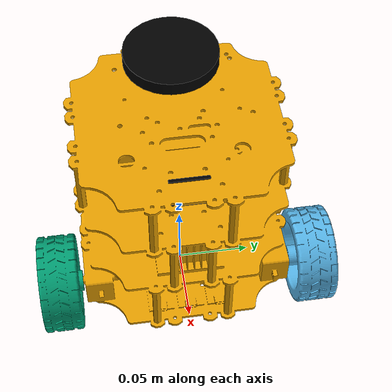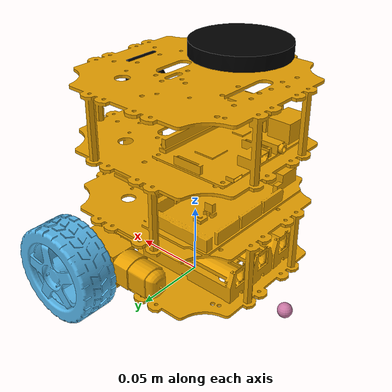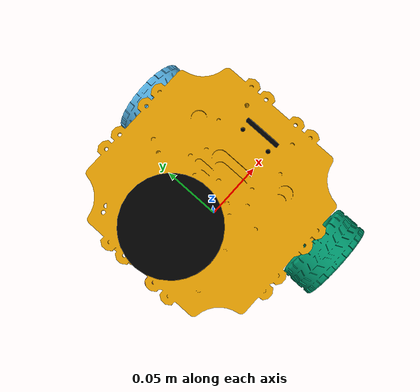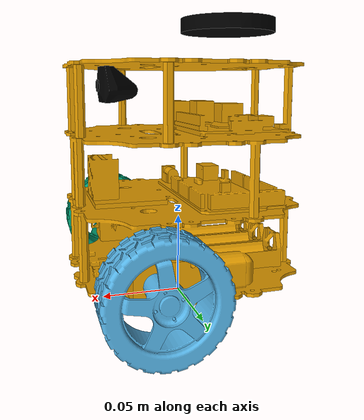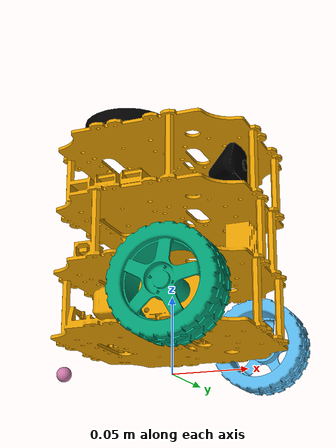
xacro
<?xml version="1.0" ?>
<robot name="tortoisebot_simple" xmlns:xacro="http://www.ros.org/wiki/xacro">

<xacro:include filename="$(find tortoisebot_gazebo)/gazebo/tortoisebot_physics.gazebo" />
<xacro:include filename="$(find tortoisebot_gazebo)/gazebo/tortoisebot_plugins.gazebo" />

<link name="base_link">
  <inertial>
    <origin xyz="-0.030635608127622015 -0.0004221703596385517 0.07737044666769882" rpy="0 0 0"/>
    <mass value="1.129162264280885"/>
    <inertia ixx="0.004045" iyy="0.003768" izz="0.002249" ixy="-1.2e-05" iyz="2e-05" ixz="-2.9e-05"/>
  </inertial>
  <visual>
    <origin xyz="0 0 0" rpy="0 0 0"/>
    <geometry>
      <mesh filename="file://$(find tortoisebot_description)/models/meshes/base_link.dae" scale="0.001 0.001 0.001"/>
    </geometry>
  </visual>
  <collision>
    <origin xyz="0 0 0" rpy="0 0 0"/>
    <geometry>
      <mesh filename="file://$(find tortoisebot_description)/models/meshes/convex_base_link.dae" scale="0.001 0.001 0.001"/>
    </geometry>
  </collision>
</link>

<link name="wheel_left">
  <inertial>
    <origin xyz="-5.817360584857412e-08 0.008992666701213833 -2.8524983942262994e-07" rpy="0 0 0"/>
    <mass value="0.04355937082025941"/>
    <inertia ixx="1.9e-05" iyy="3.3e-05" izz="1.9e-05" ixy="-0.0" iyz="0.0" ixz="-0.0"/>
  </inertial>
  <visual>
    <origin xyz="0.000197 -0.0778 -0.032453" rpy="0 0 0"/>
    <geometry>
      <mesh filename="file://$(find tortoisebot_description)/models/meshes/wheel_left.dae" scale="0.001 0.001 0.001"/>
    </geometry>
  </visual>
  <collision>
    <origin xyz="0.000197 -0.0778 -0.032453" rpy="0 0 0"/>
    <geometry>
      <mesh filename="file://$(find tortoisebot_description)/models/meshes/convex_wheel_left.dae" scale="0.001 0.001 0.001"/>
    </geometry>
  </collision>
</link>

<link name="wheel_right">
  <inertial>
    <origin xyz="1.1651486266691519e-09 -0.008992199795129496 -2.763726826629509e-07" rpy="0 0 0"/>
    <mass value="0.04355937082025929"/>
    <inertia ixx="1.9e-05" iyy="3.3e-05" izz="1.9e-05" ixy="0.0" iyz="0.0" ixz="0.0"/>
  </inertial>
  <visual>
    <origin xyz="-0.0001 0.0778 -0.032453" rpy="0 0 0"/>
    <geometry>
      <mesh filename="file://$(find tortoisebot_description)/models/meshes/wheel_right.dae" scale="0.001 0.001 0.001"/>
    </geometry>
  </visual>
  <collision>
    <origin xyz="-0.0001 0.0778 -0.032453" rpy="0 0 0"/>
    <geometry>
      <mesh filename="file://$(find tortoisebot_description)/models/meshes/convex_wheel_right.dae" scale="0.001 0.001 0.001"/>
    </geometry>
  </collision>
</link>

<link name="lidar">
  <inertial>
    <origin xyz="1.6353780135647256e-10 -1.7329123482757136e-13 0.004356361811340997" rpy="0 0 0"/>
    <mass value="0.02603693115872038"/>
    <inertia ixx="6e-06" iyy="6e-06" izz="1.2e-05" ixy="0.0" iyz="-0.0" ixz="0.0"/>
  </inertial>
  <visual>
    <origin xyz="0.03275 0.0 -0.167" rpy="0 0 0"/>
    <geometry>
      <mesh filename="file://$(find tortoisebot_description)/models/meshes/lidar.dae" scale="0.001 0.001 0.001"/>
    </geometry>
  </visual>
  <collision>
    <origin xyz="0.03275 0.0 -0.167" rpy="0 0 0"/>
    <geometry>
      <mesh filename="file://$(find tortoisebot_description)/models/meshes/convex_lidar.dae" scale="0.001 0.001 0.001"/>
    </geometry>
  </collision>
</link>

<link name="camera_link">
  <inertial>
    <origin xyz="0.0005000001639132029 -1.7004031399497072e-07 1.1512051351081354e-07" rpy="0 0 0"/>
    <mass value="3.746349259254909e-05"/>
    <inertia ixx="0.0" iyy="0.0" izz="0.0" ixy="0.0" iyz="0.0" ixz="-0.0"/>
  </inertial>
  <visual>
    <origin xyz="-0.05025 -1e-05 -0.133907" rpy="0 0 0"/>
    <geometry>
      <mesh filename="file://$(find tortoisebot_description)/models/meshes/camera_link.dae" scale="0.001 0.001 0.001"/>
    </geometry>
  </visual>
  <collision>
    <origin xyz="-0.05025 -1e-05 -0.133907" rpy="0 0 0"/>
    <geometry>
      <mesh filename="file://$(find tortoisebot_description)/models/meshes/convex_camera_link.dae" scale="0.001 0.001 0.001"/>
    </geometry>
  </collision>
</link>

<link name="camera_holder">
  <inertial>
    <origin xyz="0.012956561190815237 4.623703165912345e-06 0.0017885934065832443" rpy="0 0 0"/>
    <mass value="0.003607670102548807"/>
    <inertia ixx="0.0" iyy="0.0" izz="0.0" ixy="-0.0" iyz="-0.0" ixz="-0.0"/>
  </inertial>
  <visual>
    <origin xyz="-0.03125 0.0 -0.131063" rpy="0 0 0"/>
    <geometry>
      <mesh filename="file://$(find tortoisebot_description)/models/meshes/camera_holder.dae" scale="0.001 0.001 0.001"/>
    </geometry>
  </visual>
  <collision>
    <origin xyz="-0.03125 0.0 -0.131063" rpy="0 0 0"/>
    <geometry>
      <mesh filename="file://$(find tortoisebot_description)/models/meshes/convex_camera_holder.dae" scale="0.001 0.001 0.001"/>
    </geometry>
  </collision>
</link>

<link name="castor_wheel">
  <inertial>
    <origin xyz="2.5326962749261384e-14 4.504651888394023e-14 -0.0017582044401419582" rpy="0 0 0"/>
    <mass value="0.0033567272126794434"/>
    <inertia ixx="1e-06" iyy="1e-06" izz="1e-06" ixy="0.0" iyz="0.0" ixz="0.0"/>
  </inertial>
  <visual>
    <origin xyz="-0.0000 0.0 0.0005" rpy="0 0 0"/>
    <geometry>
      <sphere radius="0.005"/>
    </geometry>
  </visual>
  <collision>
    <origin xyz="-0.0000 0.0 0.0005" rpy="0 0 0"/>
    <geometry>
      <sphere radius="0.005"/>
    </geometry>
  </collision>
</link>

<link name="imu_link"/>

<joint name="wheel_left_joint" type="continuous">
  <origin xyz="-0.000197 0.0778 0.032453" rpy="0 0 0"/>
  <parent link="base_link"/>
  <child link="wheel_left"/>
  <axis xyz="0.0 1.0 0.0"/>
</joint>

<joint name="wheel_right_joint" type="continuous">
  <origin xyz="0.0001 -0.0778 0.032453" rpy="0 0 0"/>
  <parent link="base_link"/>
  <child link="wheel_right"/>
  <axis xyz="0.0 1.0 0.0"/>
</joint>

<joint name="lidar_joint" type="fixed">
  <origin xyz="-0.03275 0.0 0.167" rpy="0 0 0"/>
  <parent link="base_link"/>
  <child link="lidar"/>
</joint>

<joint name="camera_sensor_joint" type="fixed">
  <origin xyz="0.019 1e-05 0.002844" rpy="0 0 0"/>
  <parent link="camera_holder"/>
  <child link="camera_link"/>
</joint>

<joint name="camera_tilt_joint" type="fixed">
  <origin xyz="0.03125 0.0 0.131063" rpy="0 0 0"/>
  <parent link="base_link"/>
  <child link="camera_holder"/>
</joint>

<joint name="castor_joint" type="fixed">
  <origin xyz="-0.0767 0.0 0.0049" rpy="0 0 0"/>
  <parent link="base_link"/>
  <child link="castor_wheel"/>
</joint>

<joint name="imu_joint" type="fixed">
  <origin xyz="0.0 0.0 0.11" rpy="0 0 0"/>
  <parent link="base_link"/>
  <child link="imu_link"/>
</joint>

</robot>
